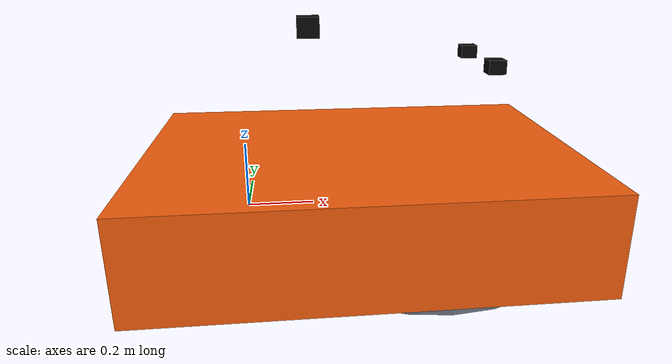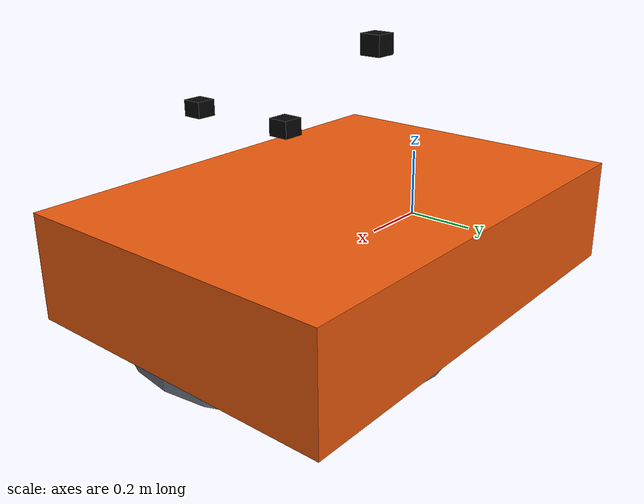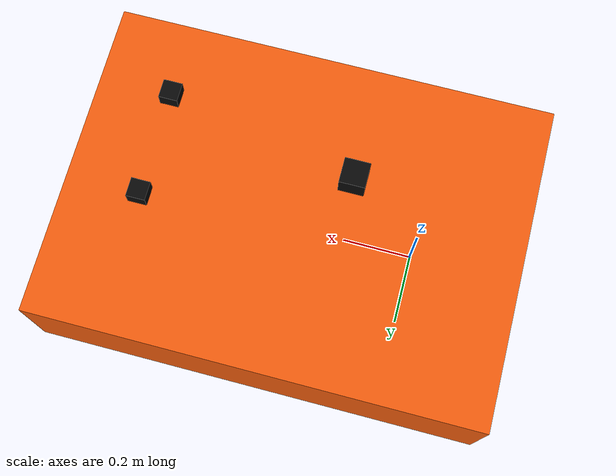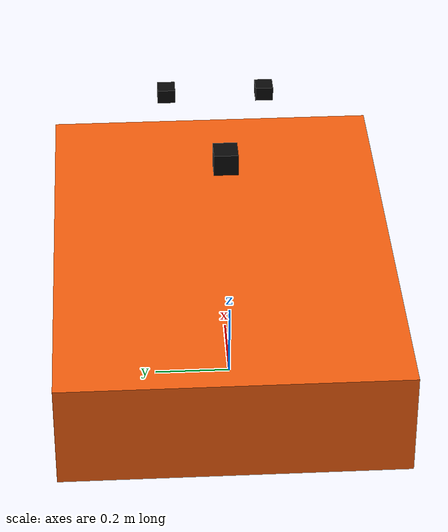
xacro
<?xml version="1.0"?>
<robot xmlns:xacro="http://www.ros.org/wiki/xacro" name="x920_grinder">
  <!-- Stable simplified chassis by default; enable visual_mesh explicitly for CAD review. -->
  <xacro:arg name="visual_mesh" default="false" />
  <xacro:arg name="sim_command_topic" default="/grinder/sim/cmd_vel" />
  <xacro:arg name="sim_odom_topic" default="/grinder/sim/ground_truth/odom" />
  <xacro:arg name="lidar_x" default="0.20" />
  <xacro:arg name="lidar_y" default="0.0" />
  <xacro:arg name="lidar_z" default="0.55" />
  <xacro:arg name="lidar_backend" default="gpu" />
  <xacro:arg name="gpu_ray_sample_offset" default="1" />
  <xacro:property name="gpu_sample_offset" value="${dict(cpu=0, gpu=int('$(arg gpu_ray_sample_offset)'))['$(arg lidar_backend)']}" />
  <xacro:arg name="lidar_horizontal_samples" default="360" />
  <xacro:arg name="lidar_vertical_samples" default="20" />
  <!-- 仿真最大量程（m），不修改真实 MID-360S 的硬件参数。 -->
  <xacro:arg name="lidar_max_range" default="45.0" />
  <xacro:arg name="sensor_noise_config" default="$(find grinder_gazebo)/config/sensor_noise.yaml" />
  <xacro:property name="sensor_noise" value="${xacro.load_yaml('$(arg sensor_noise_config)')}" />
  <xacro:property name="lidar_x" value="$(arg lidar_x)" />
  <xacro:property name="lidar_z" value="$(arg lidar_z)" />

  <!-- Values shared with grinder_chassis_driver/config/chassis_driver.yaml. -->
  <xacro:property name="wheel_track" value="0.70" />
  <xacro:property name="wheel_radius" value="0.1475" />
  <xacro:property name="wheel_width" value="0.10" />
  <!-- Rear drive axle midpoint is the motion reference x=0; lidar is +0.20 m. -->
  <xacro:property name="drive_axle_x" value="0.00" />

  <!-- Exact diff-drive footprint: x=[-0.30, 1.00], y=[-0.47, 0.47]. -->
  <xacro:property name="body_length" value="1.30" />
  <xacro:property name="body_width" value="0.94" />
  <xacro:property name="body_center_x" value="0.35" />
  <xacro:property name="body_height" value="0.30" />
  <!-- Physical mass budget: 800 kg for the complete vehicle. The aggregate
       center of gravity is at the grinding-disc center x=0.55 m. -->
  <xacro:property name="vehicle_mass" value="800.0" />
  <xacro:property name="disc_mass" value="28.0" />
  <xacro:property name="drive_wheel_mass" value="12.0" />
  <xacro:property name="caster_mass" value="1.0" />
  <xacro:property name="laser_mass" value="0.5" />
  <xacro:property name="camera_mass" value="0.1" />
  <!-- Front caster contact offset inside the grinding-disc footprint. -->
  <xacro:property name="caster_support_offset_x" value="0.15" />
  <xacro:property name="caster_radius" value="0.055" />
  <xacro:property name="body_mass" value="${vehicle_mass - disc_mass - caster_mass - 2*drive_wheel_mass - laser_mass - 2*camera_mass}" />
  <!-- This body-link COM makes the complete mass-weighted x COM equal 0.55 m. -->
  <xacro:property name="body_com_x" value="${(vehicle_mass*0.55 - disc_mass*0.55 - caster_mass*(0.55 + caster_support_offset_x) - laser_mass*lidar_x - 2*camera_mass*0.72) / body_mass}" />
  <!-- Put the aggregate COM at the disc centre height as well as its x
       position.  All link origins use base_link at the wheel axle height. -->
  <xacro:property name="body_com_z" value="${(vehicle_mass*0.04 - disc_mass*0.04 - caster_mass*caster_radius - 2*drive_wheel_mass*wheel_radius - laser_mass*(wheel_radius + lidar_z) - 2*camera_mass*(wheel_radius + 0.45)) / body_mass - wheel_radius}" />
  <xacro:property name="disc_diameter" value="0.90" />
  <xacro:property name="disc_radius" value="0.45" />
  <xacro:property name="disc_thickness" value="0.08" />

  <!-- STEP native bounds (mm): center 158.888688, 487.057577, 823; min Z 373. -->
  <xacro:property name="cad_origin_x" value="-0.158888688" />
  <xacro:property name="cad_origin_y" value="-0.487057577" />
  <xacro:property name="cad_origin_z" value="-0.5205" />

  <xacro:macro name="box_inertia" params="mass x y z origin_x:=0 origin_y:=0 origin_z:=0">
    <inertial>
      <origin xyz="${origin_x} ${origin_y} ${origin_z}" rpy="0 0 0" />
      <mass value="${mass}" />
      <inertia
        ixx="${mass * (y*y + z*z) / 12.0}" ixy="0" ixz="0"
        iyy="${mass * (x*x + z*z) / 12.0}" iyz="0"
        izz="${mass * (x*x + y*y) / 12.0}" />
    </inertial>
  </xacro:macro>

  <xacro:macro name="cylinder_inertia" params="mass radius length">
    <inertial>
      <mass value="${mass}" />
      <!-- Cylinder axis is the wheel Y axis. -->
      <inertia
        ixx="${mass * (3*radius*radius + length*length) / 12.0}" ixy="0" ixz="0"
        iyy="${mass * radius*radius / 2.0}" iyz="0"
        izz="${mass * (3*radius*radius + length*length) / 12.0}" />
    </inertial>
  </xacro:macro>

  <xacro:macro name="disc_inertia" params="mass radius length">
    <inertial>
      <mass value="${mass}" />
      <!-- Grinding disc axis is Z. -->
      <inertia
        ixx="${mass * (3*radius*radius + length*length) / 12.0}" ixy="0" ixz="0"
        iyy="${mass * (3*radius*radius + length*length) / 12.0}" iyz="0"
        izz="${mass * radius*radius / 2.0}" />
    </inertial>
  </xacro:macro>

  <material name="x920_orange">
    <color rgba="0.94 0.36 0.05 1.0" />
  </material>
  <material name="wheel_dark">
    <color rgba="0.08 0.08 0.08 1.0" />
  </material>
  <material name="sensor_black">
    <color rgba="0.03 0.03 0.03 1.0" />
  </material>
  <material name="grinding_disc">
    <color rgba="0.42 0.45 0.50 1.0" />
  </material>

  <link name="base_footprint" />

  <joint name="base_footprint_joint" type="fixed">
    <parent link="base_link" />
    <child link="base_footprint" />
    <origin xyz="0 0 ${-wheel_radius}" rpy="0 0 0" />
  </joint>

  <link name="base_link">
    <xacro:box_inertia mass="${body_mass}" x="${body_length}" y="${body_width}" z="${body_height}"
                       origin_x="${body_com_x}" origin_z="${body_com_z}" />
    <xacro:if value="$(arg visual_mesh)">
      <visual name="cad_assembly">
        <origin xyz="${cad_origin_x} ${cad_origin_y} ${cad_origin_z}" rpy="0 0 0" />
        <geometry>
          <mesh filename="package://grinder_gazebo/meshes/x920_frame.stl" scale="0.001 0.001 0.001" />
        </geometry>
        <material name="x920_orange" />
      </visual>
    </xacro:if>
    <xacro:unless value="$(arg visual_mesh)">
      <visual name="fallback_body">
        <origin xyz="${body_center_x} 0 0.0325" rpy="0 0 0" />
        <geometry><box size="${body_length} ${body_width} ${body_height}" /></geometry>
        <material name="x920_orange" />
      </visual>
    </xacro:unless>
    <collision name="body_collision">
      <!-- Keep the chassis 3 cm above ground so the drive wheels and disc caster own contact. -->
      <origin xyz="${body_center_x} 0 0.0325" rpy="0 0 0" />
      <geometry><box size="${body_length} ${body_width} ${body_height}" /></geometry>
    </collision>
  </link>

  <!-- 0.90 m diameter grinding disc. Its front edge matches footprint x=1.00 m. -->
  <link name="grinding_disc_link">
    <xacro:disc_inertia mass="${disc_mass}" radius="${disc_radius}" length="${disc_thickness}" />
    <visual name="grinding_disc_visual">
      <geometry><cylinder radius="${disc_radius}" length="${disc_thickness}" /></geometry>
      <material name="grinding_disc" />
    </visual>
    <!-- The support contact is a child caster sphere, so the visible disc stays clear. -->
  </link>
  <joint name="grinding_disc_joint" type="continuous">
    <parent link="base_link" />
    <child link="grinding_disc_link" />
    <origin xyz="0.55 0 -0.1075" rpy="0 0 0" />
    <!-- Positive grinding-disc direction is the +Z right-hand axis; vehicle forward is +X. -->
    <axis xyz="0 0 1" />
    <dynamics damping="0.2" friction="0.0" />
  </joint>

  <!-- Hidden rolling contact belonging to the front grinding-disc caster. -->
  <link name="grinding_disc_caster_wheel_link">
    <inertial>
      <mass value="${caster_mass}" />
      <inertia ixx="0.001" ixy="0" ixz="0" iyy="0.001" iyz="0" izz="0.001" />
    </inertial>
    <collision name="grinding_disc_caster_collision">
      <!-- Keep the sphere concentric with the rolling joint. An offset here
           rotates with the link, changing support height and pitching the body. -->
      <geometry><sphere radius="${caster_radius}" /></geometry>
    </collision>
  </link>
  <joint name="grinding_disc_caster_wheel_joint" type="continuous">
    <parent link="base_link" />
    <child link="grinding_disc_caster_wheel_link" />
    <origin xyz="${0.55 + caster_support_offset_x} 0 ${caster_radius - wheel_radius}" rpy="0 0 0" />
    <!-- Free rolling axis for the universal support. -->
    <axis xyz="0 1 0" />
    <dynamics damping="0.1" friction="0.0" />
  </joint>

  <xacro:macro name="drive_wheel" params="side x y sign">
    <link name="${side}_wheel_link">
      <xacro:cylinder_inertia mass="${drive_wheel_mass}" radius="${wheel_radius}" length="${wheel_width}" />
      <visual>
        <origin xyz="0 0 0" rpy="${pi/2} 0 0" />
        <geometry><cylinder radius="${wheel_radius}" length="${wheel_width}" /></geometry>
        <material name="wheel_dark" />
      </visual>
      <collision>
        <origin xyz="0 0 0" rpy="${pi/2} 0 0" />
        <geometry><cylinder radius="${wheel_radius}" length="${wheel_width}" /></geometry>
      </collision>
    </link>
    <joint name="${side}_wheel_joint" type="continuous">
      <parent link="base_link" />
      <child link="${side}_wheel_link" />
      <origin xyz="${x} ${y} 0" rpy="0 0 0" />
      <axis xyz="0 ${sign} 0" />
      <limit effort="300" velocity="120" />
      <dynamics damping="0.1" friction="0.0" />
    </joint>
  </xacro:macro>

  <!-- Gazebo joint axes stay in the vehicle frame. The simulator bridge applies
       the real controller-facing -1/-1 signs to APP wheel commands. -->
  <xacro:drive_wheel side="left" x="${drive_axle_x}" y="${wheel_track/2}" sign="1" />
  <xacro:drive_wheel side="right" x="${drive_axle_x}" y="${-wheel_track/2}" sign="1" />

  <link name="laser_link">
    <xacro:box_inertia mass="${laser_mass}" x="0.08" y="0.08" z="0.06" />
    <visual>
      <geometry><box size="0.065 0.065 0.060" /></geometry>
      <material name="sensor_black" />
    </visual>
    <collision><geometry><cylinder radius="0.04" length="0.06" /></geometry></collision>
  </link>
  <joint name="laser_joint" type="fixed">
    <parent link="base_link" />
    <child link="laser_link" />
    <!-- +X is toward the grinding disc; height is relative to the rear axle. -->
    <origin xyz="$(arg lidar_x) $(arg lidar_y) $(arg lidar_z)" rpy="0 0 0" />
  </joint>

  <!-- Match the existing Super-LIO T_imu_laser; this is a simulation convention,
       not a newly measured MID-360S factory calibration. -->
  <link name="mid360_imu_link" />
  <joint name="mid360_imu_joint" type="fixed">
    <parent link="laser_link" /><child link="mid360_imu_link" />
    <origin xyz="0.011 0.02329 -0.04412" rpy="0 0 0" />
  </joint>

  <xacro:macro name="camera_link" params="name y">
    <link name="${name}_camera_link">
      <xacro:box_inertia mass="${camera_mass}" x="0.05" y="0.05" z="0.04" />
      <visual>
        <geometry><box size="0.05 0.05 0.04" /></geometry>
        <material name="sensor_black" />
      </visual>
    </link>
    <joint name="${name}_camera_joint" type="fixed">
      <parent link="base_link" />
      <child link="${name}_camera_link" />
      <!-- Camera optical axis is +X after the standard Gazebo camera rotation. -->
      <origin xyz="0.72 ${y} 0.45" rpy="0 0 0" />
    </joint>
  </xacro:macro>

  <xacro:camera_link name="left" y="0.14" />
  <xacro:camera_link name="right" y="-0.14" />

  <xacro:include filename="$(find grinder_gazebo)/urdf/x920_grinder.gazebo.xacro" />
</robot>
